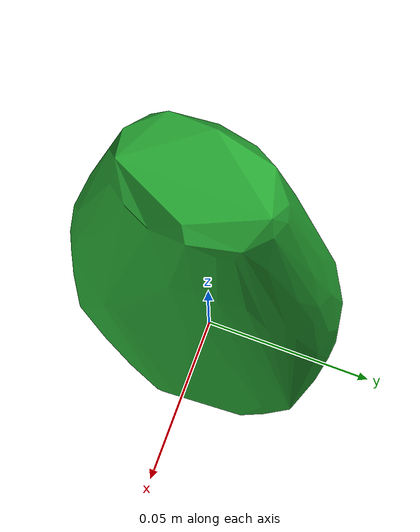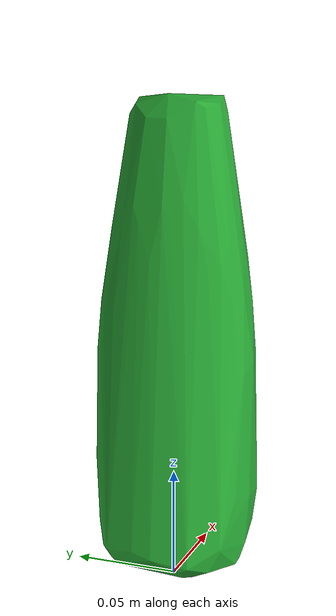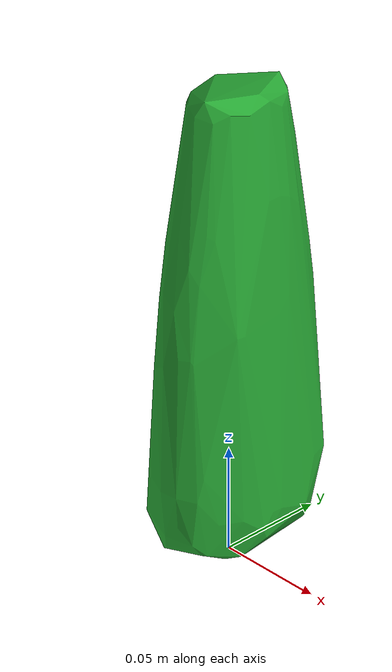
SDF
<?xml version='1.0'?>
<sdf version="1.4">
  <model name="vo5_tea_therapy_healthful_green_tea_smoothing_shampoo">
    <static>false</static>
    <link name="link">
      <inertial>
        <pose>0.003154458255397068 0.0005107195973028858 0.10060602466248283 -3.140176546722504 0.025731361531502177 -0.08019021715131812</pose>
        <mass>0.05226116082687432</mass>
        <inertia>
          <ixx>0.00018233611930891587</ixx>
          <ixy>-2.16056684512855e-21</ixy>
          <ixz>-1.3839964897612314e-20</ixz>
          <iyy>0.00017231459910366313</iyy>
          <iyz>-3.193804637439888e-20</iyz>
          <izz>2.43414055574935e-05</izz>
        </inertia>
      </inertial>
      <collision name="collision">
        <geometry>
          <mesh>
            <!-- Use a downsampled mesh for collisions -->
            <uri>model:///vo5_tea_therapy_healthful_green_tea_smoothing_shampoo/vo5_tea_therapy_healthful_green_tea_smoothing_shampoo_250_collision.obj</uri>
	        </mesh>
        </geometry>
        <surface>
      </surface>
      </collision>
      <visual name="visual">
        <geometry>
          <mesh>
            <uri>model:///vo5_tea_therapy_healthful_green_tea_smoothing_shampoo/optimized_tsdf_texture_mapped_mesh.obj</uri>
	        </mesh>
        </geometry>
        <material>
          <script>
            <uri>model:///vo5_tea_therapy_healthful_green_tea_smoothing_shampoo/vo5_tea_therapy_healthful_green_tea_smoothing_shampoo.material</uri>
            <name>vo5_tea_therapy_healthful_green_tea_smoothing_shampoo</name>
          </script>
        </material>
      </visual>
    </link>
  </model>
</sdf>
